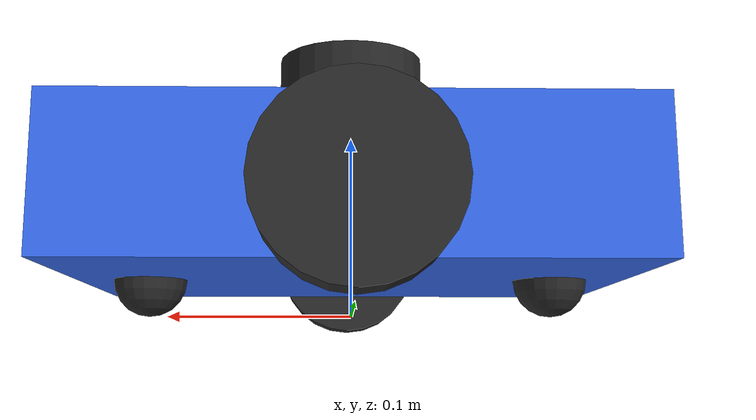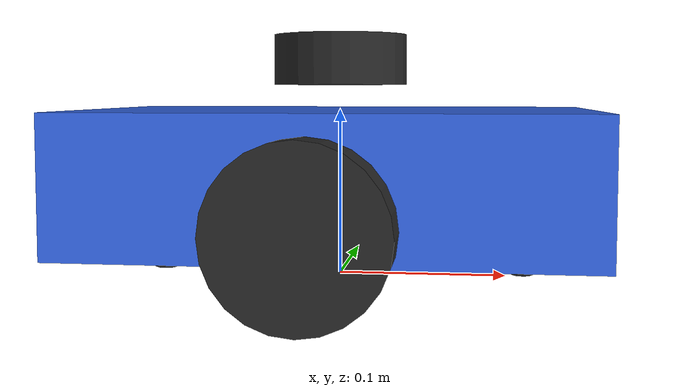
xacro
<?xml version="1.0"?>
<robot xmlns:xacro="http://www.ros.org/wiki/xacro" name="simple_diffbot">

  <!-- ============ inertia macros ============ -->
  <xacro:macro name="box_inertia" params="m x y z">
    <inertial>
      <mass value="${m}"/>
      <inertia ixx="${m*(y*y+z*z)/12.0}" iyy="${m*(x*x+z*z)/12.0}"
               izz="${m*(x*x+y*y)/12.0}" ixy="0.0" ixz="0.0" iyz="0.0"/>
    </inertial>
  </xacro:macro>

  <xacro:macro name="cylinder_inertia" params="m r l">
    <inertial>
      <mass value="${m}"/>
      <inertia ixx="${m*(3.0*r*r+l*l)/12.0}" iyy="${m*(3.0*r*r+l*l)/12.0}"
               izz="${m*r*r/2.0}" ixy="0.0" ixz="0.0" iyz="0.0"/>
    </inertial>
  </xacro:macro>

  <xacro:macro name="sphere_inertia" params="m r">
    <inertial>
      <mass value="${m}"/>
      <inertia ixx="${0.4*m*r*r}" iyy="${0.4*m*r*r}" izz="${0.4*m*r*r}"
               ixy="0.0" ixz="0.0" iyz="0.0"/>
    </inertial>
  </xacro:macro>

  <!-- ============ links ============ -->
  <link name="base_footprint"/>

  <link name="base_link">
    <visual>
      <geometry><box size="0.30 0.20 0.08"/></geometry>
      <material name="blue"><color rgba="0.2 0.4 0.9 1.0"/></material>
    </visual>
    <collision>
      <geometry><box size="0.30 0.20 0.08"/></geometry>
    </collision>
    <xacro:box_inertia m="1.2" x="0.30" y="0.20" z="0.08"/>
  </link>

  <joint name="base_footprint_joint" type="fixed">
    <parent link="base_footprint"/>
    <child link="base_link"/>
    <origin xyz="0 0 0.06"/>
  </joint>

  <!-- wheels: cylinder long axis (Z) rotated onto the Y axle -->
  <xacro:macro name="wheel" params="name side">
    <link name="${name}">
      <visual>
        <origin xyz="0 0 0" rpy="-1.5707963267948966 0 0"/>
        <geometry><cylinder radius="0.045" length="0.03"/></geometry>
        <material name="dark"><color rgba="0.15 0.15 0.15 1.0"/></material>
      </visual>
      <collision>
        <origin xyz="0 0 0" rpy="-1.5707963267948966 0 0"/>
        <geometry><cylinder radius="0.045" length="0.03"/></geometry>
      </collision>
      <inertial>
        <mass value="0.15"/>
        <inertia ixx="${0.15*(3*0.045*0.045+0.03*0.03)/12.0}"
                 iyy="${0.15*0.045*0.045/2.0}"
                 izz="${0.15*(3*0.045*0.045+0.03*0.03)/12.0}"
                 ixy="0.0" ixz="0.0" iyz="0.0"/>
      </inertial>
    </link>
    <joint name="${name}_joint" type="continuous">
      <parent link="base_link"/>
      <child link="${name}"/>
      <origin xyz="0 ${side*0.15} -0.015" rpy="0 0 0"/>
      <axis xyz="0 1 0"/>
    </joint>
  </xacro:macro>

  <xacro:wheel name="left_wheel" side="1"/>
  <xacro:wheel name="right_wheel" side="-1"/>

  <!-- caster (passive support) -->
  <link name="caster_wheel">
    <visual>
      <geometry><sphere radius="0.02"/></geometry>
      <material name="dark"><color rgba="0.15 0.15 0.15 1.0"/></material>
    </visual>
    <collision>
      <geometry><sphere radius="0.02"/></geometry>
    </collision>
    <xacro:sphere_inertia m="0.05" r="0.02"/>
  </link>
  <joint name="caster_joint" type="fixed">
    <parent link="base_link"/>
    <child link="caster_wheel"/>
    <origin xyz="-0.11 0 -0.04"/>
  </joint>

  <!-- Front support prevents the camera mass from tipping the body forward. -->
  <link name="front_caster_wheel">
    <visual>
      <geometry><sphere radius="0.02"/></geometry>
      <material name="dark"/>
    </visual>
    <collision>
      <geometry><sphere radius="0.02"/></geometry>
    </collision>
    <xacro:sphere_inertia m="0.05" r="0.02"/>
  </link>
  <joint name="front_caster_joint" type="fixed">
    <parent link="base_link"/>
    <child link="front_caster_wheel"/>
    <origin xyz="0.11 0 -0.04"/>
  </joint>
  <gazebo reference="front_caster_wheel">
    <mu1>0.01</mu1>
    <mu2>0.01</mu2>
  </gazebo>

  <!-- front-facing camera -->
  <link name="camera_link">
    <visual>
      <geometry><box size="0.04 0.04 0.03"/></geometry>
      <material name="black"><color rgba="0.05 0.05 0.05 1.0"/></material>
    </visual>
    <collision>
      <geometry><box size="0.04 0.04 0.03"/></geometry>
    </collision>
    <xacro:box_inertia m="0.03" x="0.04" y="0.04" z="0.03"/>
  </link>
  <joint name="camera_joint" type="fixed">
    <parent link="base_link"/>
    <child link="camera_link"/>
    <origin xyz="0.13 0 0.02"/>
  </joint>

  <link name="lidar_link">
    <visual>
      <geometry><cylinder radius="0.04" length="0.03"/></geometry>
      <material name="dark"><color rgba="0.15 0.15 0.15 1.0"/></material>
    </visual>
    <collision>
      <geometry><cylinder radius="0.04" length="0.03"/></geometry>
    </collision>
    <xacro:cylinder_inertia m="0.05" r="0.04" l="0.03"/>
  </link>
  <joint name="lidar_joint" type="fixed">
    <parent link="base_link"/>
    <child link="lidar_link"/>
    <origin xyz="0 0 0.07"/>
  </joint>

  <!-- ============ gazebo ============ -->
  <gazebo reference="base_link">
    <material>Gazebo/Blue</material>
  </gazebo>

  <gazebo reference="camera_link">
    <sensor type="camera" name="camera">
      <update_rate>10.0</update_rate>
      <camera>
        <horizontal_fov>1.0471975511965976</horizontal_fov>
        <image>
          <width>640</width>
          <height>480</height>
          <format>R8G8B8</format>
        </image>
        <clip>
          <near>0.05</near>
          <far>100</far>
        </clip>
      </camera>
      <plugin name="camera_controller" filename="libgazebo_ros_camera.so">
        <always_on>true</always_on>
        <update_rate>10.0</update_rate>
        <camera_name>camera</camera_name>
        <image_topic_name>image_raw</image_topic_name>
        <camera_info_topic_name>camera_info</camera_info_topic_name>
        <frame_name>camera_link</frame_name>
        <hack_baseline>0.07</hack_baseline>
        <distortion_k1>0.0</distortion_k1>
        <distortion_k2>0.0</distortion_k2>
        <distortion_k3>0.0</distortion_k3>
        <distortion_t1>0.0</distortion_t1>
        <distortion_t2>0.0</distortion_t2>
      </plugin>
    </sensor>
  </gazebo>

  <gazebo reference="lidar_link">
    <sensor type="ray" name="lidar">
      <pose>0 0 0 0 0 0</pose>
      <visualize>false</visualize>
      <update_rate>10</update_rate>
      <ray>
        <scan>
          <horizontal>
            <samples>360</samples>
            <resolution>1</resolution>
            <min_angle>-3.141592653589793</min_angle>
            <max_angle>3.141592653589793</max_angle>
          </horizontal>
        </scan>
        <range>
          <min>0.12</min>
          <max>12.0</max>
          <resolution>0.02</resolution>
        </range>
      </ray>
      <plugin name="lidar_controller" filename="libgazebo_ros_ray_sensor.so">
        <always_on>true</always_on>
        <ros>
          <namespace>/</namespace>
          <remapping>~/out:=scan</remapping>
        </ros>
        <output_type>sensor_msgs/LaserScan</output_type>
        <frame_name>lidar_link</frame_name>
      </plugin>
    </sensor>
  </gazebo>

  <gazebo>
    <plugin name="diff_drive" filename="libgazebo_ros_diff_drive.so">
      <ros>
        <namespace>/</namespace>
        <remapping>cmd_vel:=cmd_vel</remapping>
      </ros>
      <left_joint>left_wheel_joint</left_joint>
      <right_joint>right_wheel_joint</right_joint>
      <wheel_separation>0.30</wheel_separation>
      <wheel_diameter>0.09</wheel_diameter>
      <max_wheel_torque>20</max_wheel_torque>
      <max_wheel_acceleration>1.0</max_wheel_acceleration>
      <publish_odom>true</publish_odom>
      <publish_odom_tf>true</publish_odom_tf>
      <publish_wheel_tf>true</publish_wheel_tf>
      <odometry_frame>odom</odometry_frame>
      <robot_base_frame>base_footprint</robot_base_frame>
      <update_rate>50.0</update_rate>
    </plugin>
  </gazebo>

  <gazebo>
    <plugin name="joint_state" filename="libgazebo_ros_joint_state_publisher.so">
      <ros>
        <namespace>/</namespace>
        <remapping>joint_states:=joint_states</remapping>
      </ros>
      <update_rate>30.0</update_rate>
      <joint_name>left_wheel_joint</joint_name>
      <joint_name>right_wheel_joint</joint_name>
    </plugin>
  </gazebo>

</robot>
